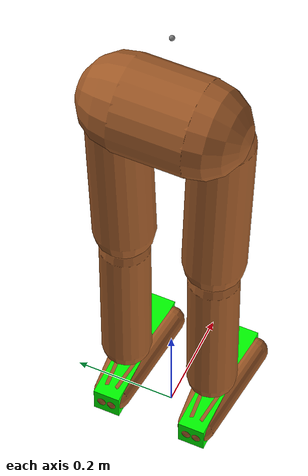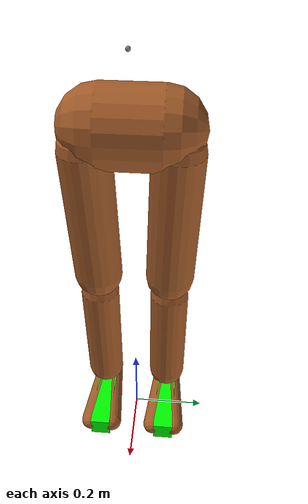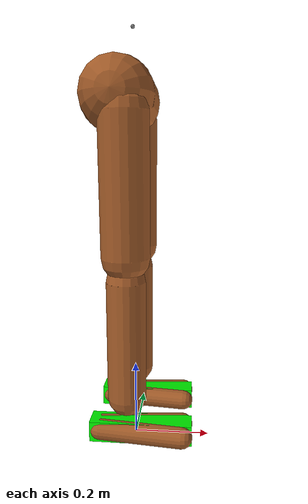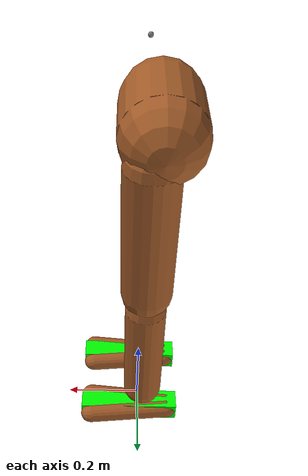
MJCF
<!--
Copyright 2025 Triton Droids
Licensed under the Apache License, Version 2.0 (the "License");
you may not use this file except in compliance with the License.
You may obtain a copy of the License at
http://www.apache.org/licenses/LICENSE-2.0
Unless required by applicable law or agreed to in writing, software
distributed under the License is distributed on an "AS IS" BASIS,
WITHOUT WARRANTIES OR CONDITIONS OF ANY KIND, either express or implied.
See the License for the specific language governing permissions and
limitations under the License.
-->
<mujoco model="Humanoid">
  <compiler angle="radian"/>

  <option iterations="3" ls_iterations="5" timestep="0.005" integrator="Euler">
    <flag eulerdamp="disable"/>
  </option>

  <asset>
    <texture type="skybox" builtin="gradient" rgb1=".3 .5 .7" rgb2="0 0 0" width="32" height="512"/>
    <texture name="body" type="cube" builtin="flat" mark="cross" width="128" height="128" rgb1="0.8 0.6 0.4" rgb2="0.8 0.6 0.4" markrgb="1 1 1"/>
    <material name="body" texture="body" texuniform="true" rgba="0.8 0.6 .4 1"/>
    <texture name="grid" type="2d" builtin="checker" width="512" height="512" rgb1=".1 .2 .3" rgb2=".2 .3 .4"/>
    <material name="grid" texture="grid" texrepeat="1 1" texuniform="true" reflectance=".2"/>
  </asset>

  <default>
    <motor ctrlrange="-1 1" ctrllimited="true"/>
    <default class="humanoid">

      <!-- geoms -->
      <geom type="capsule" contype="0" conaffinity="0" condim="1" friction=".7" solimp=".9 .99 .003" solref=".015 1" material="body" group="1"/>
      <default class="thigh">
        <geom size=".06"/>
      </default>
      <default class="shin">
        <geom fromto="0 0 0 0 0 -.3"  size=".049"/>
      </default>
      <default class="foot">
        <geom size=".027"/>
        <default class="foot1">
          <geom contype="1" conaffinity="1" fromto="-.07 -.01 0 .14 -.03 0"/>
          <site type="capsule" fromto="-.07 -.01 0 .14 -.03 0" size="0.03" rgba="0 1 0 1"/>
        </default>
        <default class="foot2">
          <geom contype="1" conaffinity="1" fromto="-.07 .01 0 .14  .03 0"/>
        </default>

      </default>

      <!-- joints -->
      <joint type="hinge" damping="3" stiffness="1" armature="0.1" limited="true"/>
        <default class="hfe">
        <joint actuatorfrcrange="-30 30" range="-1.74533 0.523599" frictionloss="0.4" />
        <position kp="20"/>
      </default>
      <default class="hxx">
        <joint actuatorfrcrange="-20 20" range="-0.610865 0.610865"/>
        <position kp="25"/>
      </default>
      <default class="kfe">
        <joint actuatorfrcrange="-30 30" range="0 2.27"/>
        <position kp="25"/>
      </default>
      <default class="ffe">
        <joint actuatorfrcrange="-20 20" range="-0.523599 0.698132" />
        <position kp="10"/>
      </default>
      <default class="faa">
        <joint actuatorfrcrange="-5 5" range="-0.523599 0.523599" />
        <position kp="10"/>
      </default>

    </default>
  </default>

  <worldbody>
    <light name="spotlight" mode="targetbodycom" target="torso" pos="3 0 4"/>
    <body name = "torso" pos="0 0 1.06" childclass="humanoid">

      <freejoint/>
      <site name="imu"/>
      <camera name="front" pos="1.210 -0.435 0.32" xyaxes="0.342 0.940 0.000 -0.321 0.117 0.940" mode="trackcom"/>
      <camera name="track" pos="0.805 -1.105 0.2" xyaxes="0.814 0.580 0.000 -0.140 0.196 0.971" mode="trackcom"/>
      <body name="waist_lower" pos="-.01 0 -0">
      <inertial mass="3.5" pos="0 0 -0.07" diaginertia="0.1 0.16 0.12"/>
      <body name="pelvis" pos="0 0 -.165">
        <geom name="butt" fromto="-.02 -.07 0 -.02 .07 0" size=".09"/>
          <body name="thigh_left" pos="0 .1 -.04">
            <joint name="LL_HR" class="hxx" axis="1 0 -1" pos="-0.06 0 .061" />
            <joint name="LL_HAA" class="hxx" axis="-1 0 1"/>
            <joint name="LL_HFE" class="hfe" axis="0 1 0"/>
            <geom name="thigh_left" fromto="0 0 0 0 -.01 -.34" class="thigh"/>
            <body name="shin_left" pos="0 -.01 -.4">
                <joint name="LL_KFE" class="kfe" axis="0 1 0" pos="0 -0.025 0"/>
                <geom name="shin_left" fromto="0 0 0 0 0 -.3" class="shin"/>
                <body name="foot_left" pos="0 0 -.39">
                <joint name="LL_FFE" class="ffe" axis="0 1 0" pos="0 0.025 0"/>
                <joint name="LL_FAA" class="faa"/>
                <body name="left_foot">
                <geom name="foot1_left" class="foot1"/>
                <geom name="foot2_left" class="foot2"/>
                <site name="left_foot" type="box" fromto="-.095 .00 0 .165 .0 0" size="0.0265" rgba="0 1 0 1"/>
                </body>
                </body>
              </body>
            </body>
          <body name="lr_hr">
            <body name="thigh_right" pos="0 -.1 -.04">
            <joint name="LR_HR" class="hxx" axis="1 0 -1" pos="-0.06 0 .061" />
            <joint name="LR_HAA" class="hxx" axis="-1 0 1"/>
            <joint name="LR_HFE" class="hfe" axis="0 1 0"/>
            <geom name="thigh_right" fromto="0 0 0 0 .01 -.34" class="thigh"/>
            <body name="shin_right" pos="0 .01 -.4">
              <joint name="LR_KFE" class="kfe" axis="0 1 0" pos="0 0.025 0"/>
              <geom name="shin_right" class="shin"/>
              <body name="foot_right" pos="0 0 -.39">
                <joint name="LR_FFE" class="ffe" axis="0 1 0" pos="0 0.025 0"/>
                <joint name="LR_FAA" class="faa"/>
                <body name="right_foot">
                <geom name="foot1_right" class="foot1"/>
                <geom name="foot2_right" class="foot2"/>
                <site name="right_foot" type="box" fromto="-.095 .00 0 .165 .0 0" size="0.0265" rgba="0 1 0 1"/>
                </body>
              </body>
            </body>
          </body>
        </body>
        </body>
     </body>
    </body>
  </worldbody>

   <contact>
    <exclude body1="waist_lower" body2="thigh_right"/>
    <exclude body1="waist_lower" body2="thigh_left"/>
  </contact>

   <actuator>
    <position class="hxx" name="LL_HR" joint="LL_HR"/>
    <position class="hxx" name="LL_HAA" joint="LL_HAA"/>
    <position class="hfe" name="LL_HFE" joint="LL_HFE"/>
    <position class="kfe" name="LL_KFE" joint="LL_KFE"/>
    <position class="ffe" name="LL_FFE" joint="LL_FFE"/>
    <position class="faa" name="LL_FAA" joint="LL_FAA"/>
    <position class="hxx" name="LR_HR" joint="LR_HR"/>
    <position class="hxx" name="LR_HAA" joint="LR_HAA"/>
    <position class="hfe" name="LR_HFE" joint="LR_HFE"/>
    <position class="kfe" name="LR_KFE" joint="LR_KFE"/>
    <position class="ffe" name="LR_FFE" joint="LR_FFE"/>
    <position class="faa" name="LR_FAA" joint="LR_FAA"/>
  </actuator>

  <sensor>
    <gyro site="imu" name="gyro"/>
    <velocimeter site="imu" name="local_linvel"/>
    <accelerometer site="imu" name="accelerometer"/>
    <framezaxis objtype="site" objname="imu" name="upvector"/> <!-- #Gravity vector -->
    <framexaxis objtype="site" objname="imu" name="forwardvector"/>
    <framelinvel objtype="site" objname="imu" name="global_linvel"/>
    <frameangvel objtype="site" objname="imu" name="global_angvel"/>
    <framepos objtype="site" objname="imu" name="position"/>
    <framequat objtype="site" objname="imu" name="orientation"/>
    <framelinvel objtype="site" objname="left_foot" name="left_foot_global_linvel"/>
    <framelinvel objtype="site" objname="right_foot" name="right_foot_global_linvel"/>
    <framexaxis objtype="site" objname="left_foot" name="left_foot_upvector"/>
    <framexaxis objtype="site" objname="right_foot" name="right_foot_upvector"/>
    <framepos objtype="site" objname="left_foot" name="left_foot_pos"/>
    <framepos objtype="site" objname="right_foot" name="right_foot_pos"/>
  </sensor>

</mujoco>
